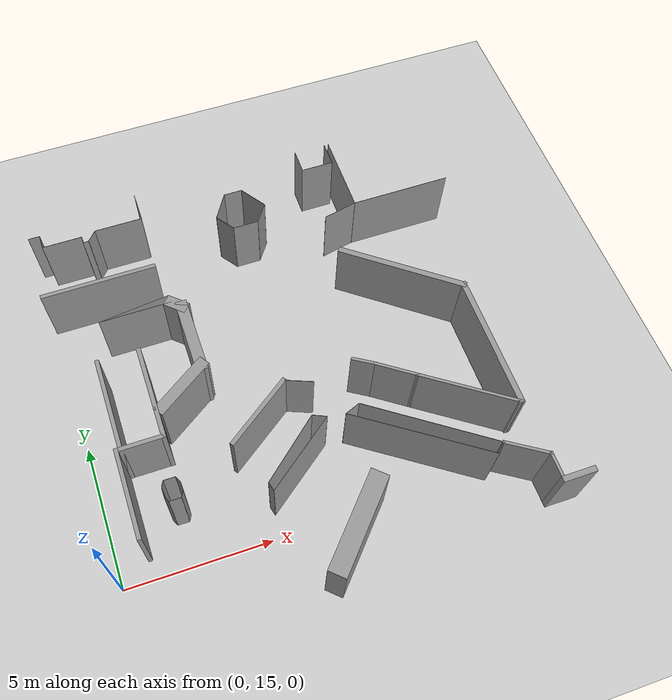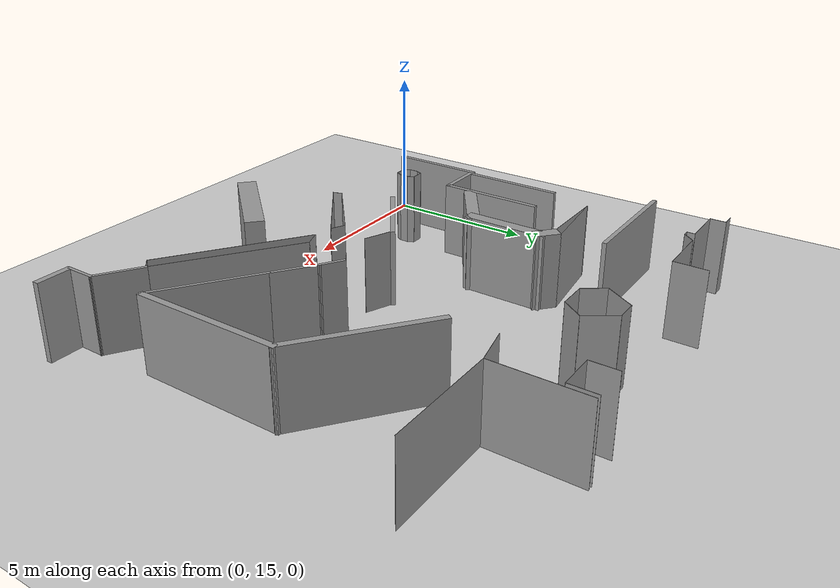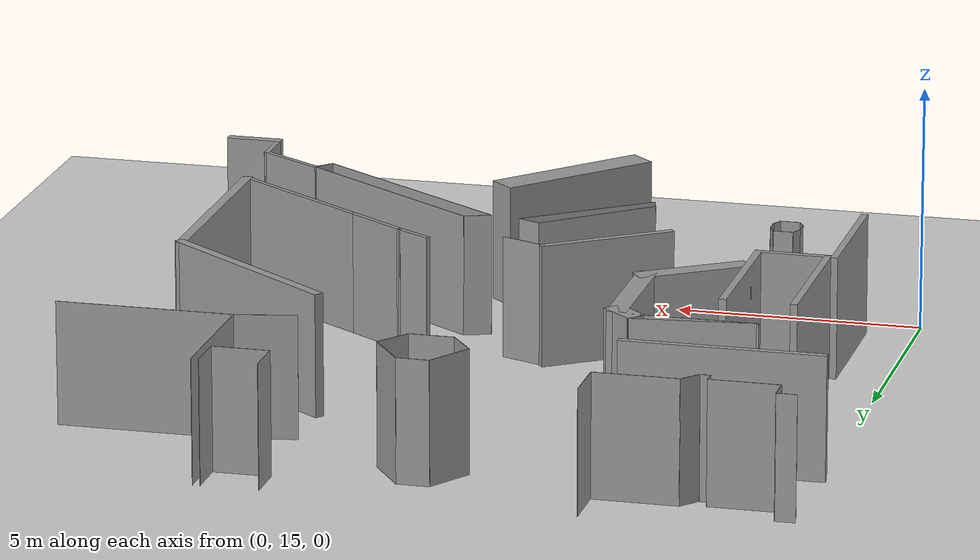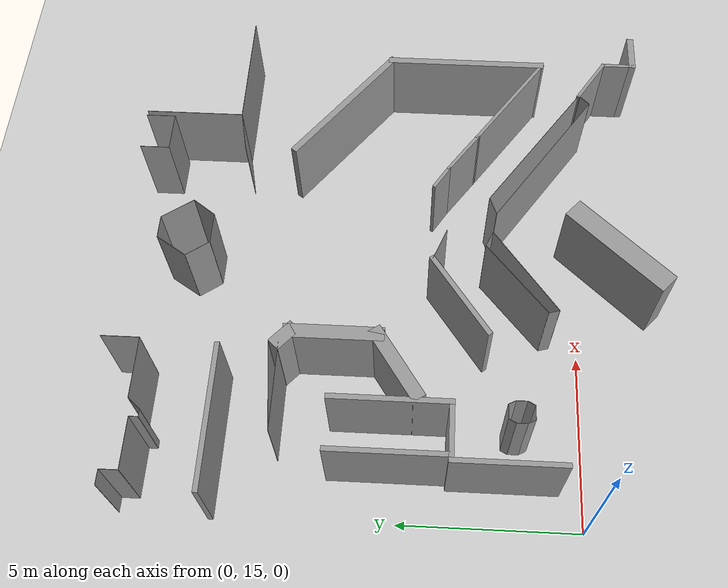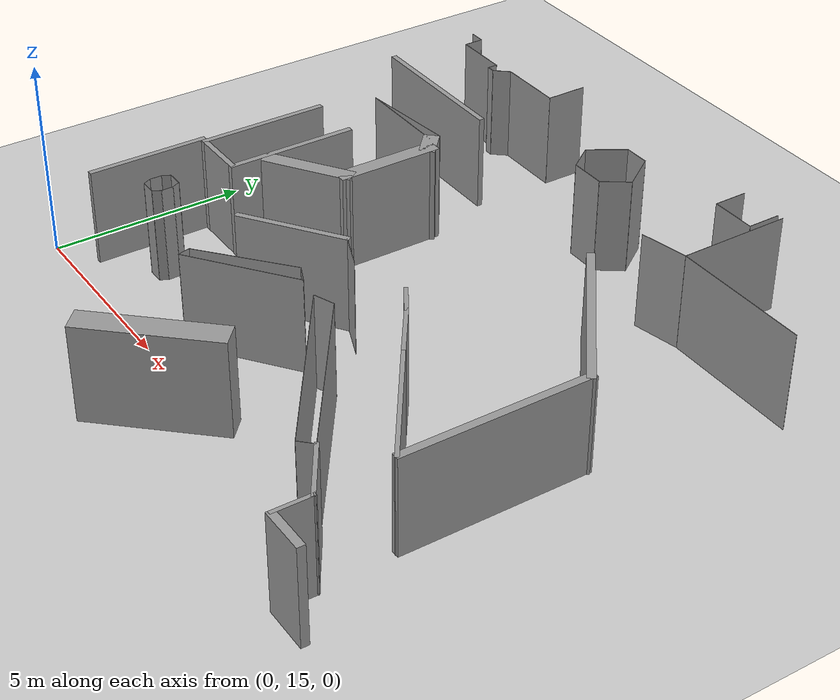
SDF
<sdf version="1.7">
 <world name="default">
  <model name="ground_plane">
   <static>1</static>
   <link name="link">
    <collision name="collision">
     <geometry><plane><normal>0 0 1</normal><size>100 100</size></plane></geometry>
     <surface>
      <contact><collide_bitmask>65535</collide_bitmask></contact>
      <friction><ode><mu>100</mu><mu2>50</mu2></ode></friction>
     </surface>
    </collision>
    <visual name="visual">
     <cast_shadows>0</cast_shadows>
     <geometry><plane><normal>0 0 1</normal><size>100 100</size></plane></geometry>
     <material>
      <script><uri>file://media/materials/scripts/gazebo.material</uri><name>Gazebo/Grey</name></script>
     </material>
    </visual>
   </link>
  </model>
  <model name="Untitled_0_clone">
   <pose>10.7704 26.4495 0 0 0 -3.14159</pose>
   <link name="Wall_0">
    <collision name="Wall_0_Collision">
     <geometry><box><size>3.56 0.01 2.5</size></box></geometry>
     <pose>0 0 1.25 0 -0 0</pose>
    </collision>
    <visual name="Wall_0_Visual">
     <pose>0 0 1.25 0 -0 0</pose>
     <geometry><box><size>3.56 0.01 2.5</size></box></geometry>
     <material>
      <script><uri>file://media/materials/scripts/gazebo.material</uri><name>Gazebo/Grey</name></script>
      <ambient>1 1 1 1</ambient>
     </material>
     <meta><layer>0</layer></meta>
    </visual>
    <pose>-2.45099 1.29954 0 0 -0 0</pose>
   </link>
   <link name="Wall_10">
    <collision name="Wall_10_Collision">
     <geometry><box><size>0.855 0.01 2.5</size></box></geometry>
     <pose>0 0 1.25 0 -0 0</pose>
    </collision>
    <visual name="Wall_10_Visual">
     <pose>0 0 1.25 0 -0 0</pose>
     <geometry><box><size>0.855 0.01 2.5</size></box></geometry>
     <material>
      <script><uri>file://media/materials/scripts/gazebo.material</uri><name>Gazebo/Grey</name></script>
      <ambient>1 1 1 1</ambient>
     </material>
     <meta><layer>0</layer></meta>
    </visual>
    <pose>0.624012 -1.12796 0 0 -0 -1.5708</pose>
   </link>
   <link name="Wall_12">
    <collision name="Wall_12_Collision">
     <geometry><box><size>0.91 0.01 2.5</size></box></geometry>
     <pose>0 0 1.25 0 -0 0</pose>
    </collision>
    <visual name="Wall_12_Visual">
     <pose>0 0 1.25 0 -0 0</pose>
     <geometry><box><size>0.91 0.01 2.5</size></box></geometry>
     <material>
      <script><uri>file://media/materials/scripts/gazebo.material</uri><name>Gazebo/Grey</name></script>
      <ambient>1 1 1 1</ambient>
     </material>
     <meta><layer>0</layer></meta>
    </visual>
    <pose>3.32401 0.949543 0 0 -0 0</pose>
   </link>
   <link name="Wall_14">
    <collision name="Wall_14_Collision">
     <geometry><box><size>0.784209 0.01 2.5</size></box></geometry>
     <pose>0 0 1.25 0 -0 0</pose>
    </collision>
    <visual name="Wall_14_Visual">
     <pose>0 0 1.25 0 -0 0</pose>
     <geometry><box><size>0.784209 0.01 2.5</size></box></geometry>
     <material>
      <script><uri>file://media/materials/scripts/gazebo.material</uri><name>Gazebo/Grey</name></script>
      <ambient>1 1 1 1</ambient>
     </material>
     <meta><layer>0</layer></meta>
    </visual>
    <pose>3.99901 0.634543 0 0 -0 -0.950547</pose>
   </link>
   <link name="Wall_16">
    <collision name="Wall_16_Collision">
     <geometry><box><size>1.03927 0.01 2.5</size></box></geometry>
     <pose>0 0 1.25 0 -0 0</pose>
    </collision>
    <visual name="Wall_16_Visual">
     <pose>0 0 1.25 0 -0 0</pose>
     <geometry><box><size>1.03927 0.01 2.5</size></box></geometry>
     <material>
      <script><uri>file://media/materials/scripts/gazebo.material</uri><name>Gazebo/Grey</name></script>
      <ambient>1 1 1 1</ambient>
     </material>
     <meta><layer>0</layer></meta>
    </visual>
    <pose>3.94901 -0.115457 0 0 -0 -2.13455</pose>
   </link>
   <link name="Wall_18">
    <collision name="Wall_18_Collision">
     <geometry><box><size>0.66 0.01 2.5</size></box></geometry>
     <pose>0 0 1.25 0 -0 0</pose>
    </collision>
    <visual name="Wall_18_Visual">
     <pose>0 0 1.25 0 -0 0</pose>
     <geometry><box><size>0.66 0.01 2.5</size></box></geometry>
     <material>
      <script><uri>file://media/materials/scripts/gazebo.material</uri><name>Gazebo/Grey</name></script>
      <ambient>1 1 1 1</ambient>
     </material>
     <meta><layer>0</layer></meta>
    </visual>
    <pose>3.34901 -0.550457 0 0 -0 3.14159</pose>
   </link>
   <link name="Wall_2">
    <collision name="Wall_2_Collision">
     <geometry><box><size>2.86 0.01 2.5</size></box></geometry>
     <pose>0 0 1.25 0 -0 0</pose>
    </collision>
    <visual name="Wall_2_Visual">
     <pose>0 0 1.25 0 -0 0</pose>
     <geometry><box><size>2.86 0.01 2.5</size></box></geometry>
     <material>
      <script><uri>file://media/materials/scripts/gazebo.material</uri><name>Gazebo/Grey</name></script>
      <ambient>1 1 1 1</ambient>
     </material>
     <meta><layer>0</layer></meta>
    </visual>
    <pose>-0.675988 -0.125457 0 0 -0 -1.5708</pose>
   </link>
   <link name="Wall_20">
    <collision name="Wall_20_Collision">
     <geometry><box><size>1.06683 0.01 2.5</size></box></geometry>
     <pose>0 0 1.25 0 -0 0</pose>
    </collision>
    <visual name="Wall_20_Visual">
     <pose>0 0 1.25 0 -0 0</pose>
     <geometry><box><size>1.06683 0.01 2.5</size></box></geometry>
     <material>
      <script><uri>file://media/materials/scripts/gazebo.material</uri><name>Gazebo/Grey</name></script>
      <ambient>1 1 1 1</ambient>
     </material>
     <meta><layer>0</layer></meta>
    </visual>
    <pose>2.72401 -0.115457 0 0 -0 2.17455</pose>
   </link>
   <link name="Wall_22">
    <collision name="Wall_22_Collision">
     <geometry><box><size>0.784209 0.01 2.5</size></box></geometry>
     <pose>0 0 1.25 0 -0 0</pose>
    </collision>
    <visual name="Wall_22_Visual">
     <pose>0 0 1.25 0 -0 0</pose>
     <geometry><box><size>0.784209 0.01 2.5</size></box></geometry>
     <material>
      <script><uri>file://media/materials/scripts/gazebo.material</uri><name>Gazebo/Grey</name></script>
      <ambient>1 1 1 1</ambient>
     </material>
     <meta><layer>0</layer></meta>
    </visual>
    <pose>2.64901 0.634543 0 0 -0 -2.19105</pose>
   </link>
   <link name="Wall_4">
    <collision name="Wall_4_Collision">
     <geometry><box><size>1.23577 0.01 2.5</size></box></geometry>
     <pose>0 0 1.25 0 -0 0</pose>
    </collision>
    <visual name="Wall_4_Visual">
     <pose>0 0 1.25 0 -0 0</pose>
     <geometry><box><size>1.23577 0.01 2.5</size></box></geometry>
     <material>
      <script><uri>file://media/materials/scripts/gazebo.material</uri><name>Gazebo/Grey</name></script>
      <ambient>1 1 1 1</ambient>
     </material>
     <meta><layer>0</layer></meta>
    </visual>
    <pose>-0.075987 1.42454 0 0 -0 0.205395</pose>
   </link>
   <link name="Wall_6">
    <collision name="Wall_6_Collision">
     <geometry><box><size>0.855 0.01 2.5</size></box></geometry>
     <pose>0 0 1.25 0 -0 0</pose>
    </collision>
    <visual name="Wall_6_Visual">
     <pose>0 0 1.25 0 -0 0</pose>
     <geometry><box><size>0.855 0.01 2.5</size></box></geometry>
     <material>
      <script><uri>file://media/materials/scripts/gazebo.material</uri><name>Gazebo/Grey</name></script>
      <ambient>1 1 1 1</ambient>
     </material>
     <meta><layer>0</layer></meta>
    </visual>
    <pose>-0.525987 -1.12796 0 0 -0 -1.5708</pose>
   </link>
   <link name="Wall_8">
    <collision name="Wall_8_Collision">
     <geometry><box><size>1.16 0.01 2.5</size></box></geometry>
     <pose>0 0 1.25 0 -0 0</pose>
    </collision>
    <visual name="Wall_8_Visual">
     <pose>0 0 1.25 0 -0 0</pose>
     <geometry><box><size>1.16 0.01 2.5</size></box></geometry>
     <material>
      <script><uri>file://media/materials/scripts/gazebo.material</uri><name>Gazebo/Grey</name></script>
      <ambient>1 1 1 1</ambient>
     </material>
     <meta><layer>0</layer></meta>
    </visual>
    <pose>0.049013 -0.705457 0 0 -0 0</pose>
   </link>
   <static>1</static>
  </model>
  <model name="Untitled_1_clone">
   <pose>7.465 26.4075 0 0 -0 3.14159</pose>
   <link name="Wall_0">
    <collision name="Wall_0_Collision">
     <geometry><box><size>1.06 0.01 2.5</size></box></geometry>
     <pose>0 0 1.25 0 -0 0</pose>
    </collision>
    <visual name="Wall_0_Visual">
     <pose>0 0 1.25 0 -0 0</pose>
     <geometry><box><size>1.06 0.01 2.5</size></box></geometry>
     <material>
      <script><uri>file://media/materials/scripts/gazebo.material</uri><name>Gazebo/Grey</name></script>
      <ambient>1 1 1 1</ambient>
     </material>
     <meta><layer>0</layer></meta>
    </visual>
    <pose>3.465 -1.0675 0 0 -0 1.5708</pose>
   </link>
   <link name="Wall_10">
    <collision name="Wall_10_Collision">
     <geometry><box><size>0.470977 0.01 2.5</size></box></geometry>
     <pose>0 0 1.25 0 -0 0</pose>
    </collision>
    <visual name="Wall_10_Visual">
     <pose>0 0 1.25 0 -0 0</pose>
     <geometry><box><size>0.470977 0.01 2.5</size></box></geometry>
     <material>
      <script><uri>file://media/materials/scripts/gazebo.material</uri><name>Gazebo/Grey</name></script>
      <ambient>1 1 1 1</ambient>
     </material>
     <meta><layer>0</layer></meta>
    </visual>
    <pose>5.315 -0.3675 0 0 -0 0.86217</pose>
   </link>
   <link name="Wall_14">
    <collision name="Wall_14_Collision">
     <geometry><box><size>0.01 0.01 2.5</size></box></geometry>
     <pose>0 0 1.25 0 -0 0</pose>
    </collision>
    <visual name="Wall_14_Visual">
     <pose>0 0 1.25 0 -0 0</pose>
     <geometry><box><size>0.01 0.01 2.5</size></box></geometry>
     <material>
      <script><uri>file://media/materials/scripts/gazebo.material</uri><name>Gazebo/Grey</name></script>
      <ambient>1 1 1 1</ambient>
     </material>
     <meta><layer>0</layer></meta>
    </visual>
    <pose>5.465 -0.1925 0 0 -0 0</pose>
   </link>
   <link name="Wall_18">
    <collision name="Wall_18_Collision">
     <geometry><box><size>0.01 0.01 2.5</size></box></geometry>
     <pose>0 0 1.25 0 -0 0</pose>
    </collision>
    <visual name="Wall_18_Visual">
     <pose>0 0 1.25 0 -0 0</pose>
     <geometry><box><size>0.01 0.01 2.5</size></box></geometry>
     <material>
      <script><uri>file://media/materials/scripts/gazebo.material</uri><name>Gazebo/Grey</name></script>
      <ambient>1 1 1 1</ambient>
     </material>
     <meta><layer>0</layer></meta>
    </visual>
    <pose>5.665 -0.1925 0 0 -0 0</pose>
   </link>
   <link name="Wall_20">
    <collision name="Wall_20_Collision">
     <geometry><box><size>0.26 0.01 2.5</size></box></geometry>
     <pose>0 0 1.25 0 -0 0</pose>
    </collision>
    <visual name="Wall_20_Visual">
     <pose>0 0 1.25 0 -0 0</pose>
     <geometry><box><size>0.26 0.01 2.5</size></box></geometry>
     <material>
      <script><uri>file://media/materials/scripts/gazebo.material</uri><name>Gazebo/Grey</name></script>
      <ambient>1 1 1 1</ambient>
     </material>
     <meta><layer>0</layer></meta>
    </visual>
    <pose>5.665 -0.3175 0 0 -0 -1.5708</pose>
   </link>
   <link name="Wall_22">
    <collision name="Wall_22_Collision">
     <geometry><box><size>0.21 0.01 2.5</size></box></geometry>
     <pose>0 0 1.25 0 -0 0</pose>
    </collision>
    <visual name="Wall_22_Visual">
     <pose>0 0 1.25 0 -0 0</pose>
     <geometry><box><size>0.21 0.01 2.5</size></box></geometry>
     <material>
      <script><uri>file://media/materials/scripts/gazebo.material</uri><name>Gazebo/Grey</name></script>
      <ambient>1 1 1 1</ambient>
     </material>
     <meta><layer>0</layer></meta>
    </visual>
    <pose>5.565 -0.1925 0 0 -0 0</pose>
   </link>
   <link name="Wall_24">
    <collision name="Wall_24_Collision">
     <geometry><box><size>1.41 0.01 2.5</size></box></geometry>
     <pose>0 0 1.25 0 -0 0</pose>
    </collision>
    <visual name="Wall_24_Visual">
     <pose>0 0 1.25 0 -0 0</pose>
     <geometry><box><size>1.41 0.01 2.5</size></box></geometry>
     <material>
      <script><uri>file://media/materials/scripts/gazebo.material</uri><name>Gazebo/Grey</name></script>
      <ambient>1 1 1 1</ambient>
     </material>
     <meta><layer>0</layer></meta>
    </visual>
    <pose>6.365 -0.4425 0 0 -0 0</pose>
   </link>
   <link name="Wall_26">
    <collision name="Wall_26_Collision">
     <geometry><box><size>0.512 0.01 2.5</size></box></geometry>
     <pose>0 0 1.25 0 -0 0</pose>
    </collision>
    <visual name="Wall_26_Visual">
     <pose>0 0 1.25 0 -0 0</pose>
     <geometry><box><size>0.512 0.01 2.5</size></box></geometry>
     <material>
      <script><uri>file://media/materials/scripts/gazebo.material</uri><name>Gazebo/Grey</name></script>
      <ambient>1 1 1 1</ambient>
     </material>
     <meta><layer>0</layer></meta>
    </visual>
    <pose>7.065 -0.6935 0 0 -0 -1.5708</pose>
   </link>
   <link name="Wall_28">
    <collision name="Wall_28_Collision">
     <geometry><box><size>0.41 0.01 2.5</size></box></geometry>
     <pose>0 0 1.25 0 -0 0</pose>
    </collision>
    <visual name="Wall_28_Visual">
     <pose>0 0 1.25 0 -0 0</pose>
     <geometry><box><size>0.41 0.01 2.5</size></box></geometry>
     <material>
      <script><uri>file://media/materials/scripts/gazebo.material</uri><name>Gazebo/Grey</name></script>
      <ambient>1 1 1 1</ambient>
     </material>
     <meta><layer>0</layer></meta>
    </visual>
    <pose>7.265 -0.9445 0 0 -0 0</pose>
   </link>
   <link name="Wall_30">
    <collision name="Wall_30_Collision">
     <geometry><box><size>4.04 0.14 2.5</size></box></geometry>
     <pose>0 0 1.25 0 -0 0</pose>
    </collision>
    <visual name="Wall_30_Visual">
     <pose>0 0 1.25 0 -0 0</pose>
     <geometry><box><size>4.04 0.14 2.5</size></box></geometry>
     <material>
      <script><uri>file://media/materials/scripts/gazebo.material</uri><name>Gazebo/Grey</name></script>
      <ambient>1 1 1 1</ambient>
     </material>
     <meta><layer>0</layer></meta>
    </visual>
    <pose>5.515 1.5275 0 0 -0 0</pose>
   </link>
   <link name="Wall_8">
    <collision name="Wall_8_Collision">
     <geometry><box><size>1.71 0.01 2.5</size></box></geometry>
     <pose>0 0 1.25 0 -0 0</pose>
    </collision>
    <visual name="Wall_8_Visual">
     <pose>0 0 1.25 0 -0 0</pose>
     <geometry><box><size>1.71 0.01 2.5</size></box></geometry>
     <material>
      <script><uri>file://media/materials/scripts/gazebo.material</uri><name>Gazebo/Grey</name></script>
      <ambient>1 1 1 1</ambient>
     </material>
     <meta><layer>0</layer></meta>
    </visual>
    <pose>4.315 -0.5425 0 0 -0 0</pose>
   </link>
   <static>1</static>
  </model>
  <model name="Untitled_2_clone">
   <pose>7.995 21.8148 0 0 -0 3.14159</pose>
   <link name="Wall_0">
    <collision name="Wall_0_Collision">
     <geometry><box><size>2.73 0.4 2.5</size></box></geometry>
     <pose>0 0 1.25 0 -0 0</pose>
    </collision>
    <visual name="Wall_0_Visual">
     <pose>0 0 1.25 0 -0 0</pose>
     <geometry><box><size>2.73 0.4 2.5</size></box></geometry>
     <material>
      <script><uri>file://media/materials/scripts/gazebo.material</uri><name>Gazebo/Grey</name></script>
      <ambient>1 1 1 1</ambient>
     </material>
     <meta><layer>0</layer></meta>
    </visual>
    <pose>3.595 -0.020154 0 0 -0 -1.5708</pose>
   </link>
   <link name="Wall_10">
    <collision name="Wall_10_Collision">
     <geometry><box><size>3.36 0.15 2.5</size></box></geometry>
     <pose>0 0 1.25 0 -0 0</pose>
    </collision>
    <visual name="Wall_10_Visual">
     <pose>0 0 1.25 0 -0 0</pose>
     <geometry><box><size>3.36 0.15 2.5</size></box></geometry>
     <material>
      <script><uri>file://media/materials/scripts/gazebo.material</uri><name>Gazebo/Grey</name></script>
      <ambient>1 1 1 1</ambient>
     </material>
     <meta><layer>0</layer></meta>
    </visual>
    <pose>5.395 1.57985 0 0 -0 1.5708</pose>
   </link>
   <link name="Wall_12">
    <collision name="Wall_12_Collision">
     <geometry><box><size>1.54 0.14 2.5</size></box></geometry>
     <pose>0 0 1.25 0 -0 0</pose>
    </collision>
    <visual name="Wall_12_Visual">
     <pose>0 0 1.25 0 -0 0</pose>
     <geometry><box><size>1.54 0.14 2.5</size></box></geometry>
     <material>
      <script><uri>file://media/materials/scripts/gazebo.material</uri><name>Gazebo/Grey</name></script>
      <ambient>1 1 1 1</ambient>
     </material>
     <meta><layer>0</layer></meta>
    </visual>
    <pose>6.095 3.18485 0 0 -0 0</pose>
   </link>
   <link name="Wall_14">
    <collision name="Wall_14_Collision">
     <geometry><box><size>3.35 0.14 2.5</size></box></geometry>
     <pose>0 0 1.25 0 -0 0</pose>
    </collision>
    <visual name="Wall_14_Visual">
     <pose>0 0 1.25 0 -0 0</pose>
     <geometry><box><size>3.35 0.14 2.5</size></box></geometry>
     <material>
      <script><uri>file://media/materials/scripts/gazebo.material</uri><name>Gazebo/Grey</name></script>
      <ambient>1 1 1 1</ambient>
     </material>
     <meta><layer>0</layer></meta>
    </visual>
    <pose>6.795 1.57985 0 0 -0 -1.5708</pose>
   </link>
   <link name="Wall_16">
    <collision name="Wall_16_Collision">
     <geometry><box><size>3.07061 0.14 2.5</size></box></geometry>
     <pose>0 0 1.25 0 -0 0</pose>
    </collision>
    <visual name="Wall_16_Visual">
     <pose>0 0 1.25 0 -0 0</pose>
     <geometry><box><size>3.07061 0.14 2.5</size></box></geometry>
     <material>
      <script><uri>file://media/materials/scripts/gazebo.material</uri><name>Gazebo/Grey</name></script>
      <ambient>1 1 1 1</ambient>
     </material>
     <meta><layer>0</layer></meta>
    </visual>
    <pose>6.935 4.64985 0 0 -0 1.5708</pose>
   </link>
   <link name="Wall_2">
    <collision name="Wall_2_Collision">
     <geometry><box><size>0.803609 0.4 2.5</size></box></geometry>
     <pose>0 0 1.25 0 -0 0</pose>
    </collision>
    <visual name="Wall_2_Visual">
     <pose>0 0 1.25 0 -0 0</pose>
     <geometry><box><size>0.803609 0.4 2.5</size></box></geometry>
     <material>
      <script><uri>file://media/materials/scripts/gazebo.material</uri><name>Gazebo/Grey</name></script>
      <ambient>1 1 1 1</ambient>
     </material>
     <meta><layer>0</layer></meta>
    </visual>
    <pose>3.745 -1.32015 0 0 -0 -0.732815</pose>
   </link>
   <link name="Wall_4">
    <collision name="Wall_4_Collision">
     <geometry><box><size>2.51 0.01 2.5</size></box></geometry>
     <pose>0 0 1.25 0 -0 0</pose>
    </collision>
    <visual name="Wall_4_Visual">
     <pose>0 0 1.25 0 -0 0</pose>
     <geometry><box><size>2.51 0.01 2.5</size></box></geometry>
     <material>
      <script><uri>file://media/materials/scripts/gazebo.material</uri><name>Gazebo/Grey</name></script>
      <ambient>1 1 1 1</ambient>
     </material>
     <meta><layer>0</layer></meta>
    </visual>
    <pose>5.145 -1.45515 0 0 -0 0</pose>
   </link>
   <link name="Wall_6">
    <collision name="Wall_6_Collision">
     <geometry><box><size>2.51563 0.001 2.5</size></box></geometry>
     <pose>0 0 1.25 0 -0 0</pose>
    </collision>
    <visual name="Wall_6_Visual">
     <pose>0 0 1.25 0 -0 0</pose>
     <geometry><box><size>2.51563 0.001 2.5</size></box></geometry>
     <material>
      <script><uri>file://media/materials/scripts/gazebo.material</uri><name>Gazebo/Grey</name></script>
      <ambient>1 1 1 1</ambient>
     </material>
     <meta><layer>0</layer></meta>
    </visual>
    <pose>5.145 -1.59515 0 0 -0 -3.03006</pose>
   </link>
   <link name="Wall_8">
    <collision name="Wall_8_Collision">
     <geometry><box><size>2.33039 0.4 2.5</size></box></geometry>
     <pose>0 0 1.25 0 -0 0</pose>
    </collision>
    <visual name="Wall_8_Visual">
     <pose>0 0 1.25 0 -0 0</pose>
     <geometry><box><size>2.33039 0.4 2.5</size></box></geometry>
     <material>
      <script><uri>file://media/materials/scripts/gazebo.material</uri><name>Gazebo/Grey</name></script>
      <ambient>1 1 1 1</ambient>
     </material>
     <meta><layer>0</layer></meta>
    </visual>
    <pose>4.395 1.68485 0 0 -0 0.59375</pose>
   </link>
   <static>1</static>
  </model>
  <model name="Untitled_3_clone">
   <pose>8.54665 22.2466 0 0 -0 3.14159</pose>
   <link name="Wall_0">
    <collision name="Wall_0_Collision">
     <geometry><box><size>0.233607 0.01 2.5</size></box></geometry>
     <pose>0 0 1.25 0 -0 0</pose>
    </collision>
    <visual name="Wall_0_Visual">
     <pose>0 0 1.25 0 -0 0</pose>
     <geometry><box><size>0.233607 0.01 2.5</size></box></geometry>
     <material>
      <script><uri>file://media/materials/scripts/gazebo.material</uri><name>Gazebo/Grey</name></script>
      <ambient>1 1 1 1</ambient>
     </material>
     <meta><layer>0</layer></meta>
    </visual>
    <pose>5.89665 5.64665 0 0 -0 -2.03444</pose>
   </link>
   <link name="Wall_10">
    <collision name="Wall_10_Collision">
     <geometry><box><size>0.31 0.01 2.5</size></box></geometry>
     <pose>0 0 1.25 0 -0 0</pose>
    </collision>
    <visual name="Wall_10_Visual">
     <pose>0 0 1.25 0 -0 0</pose>
     <geometry><box><size>0.31 0.01 2.5</size></box></geometry>
     <material>
      <script><uri>file://media/materials/scripts/gazebo.material</uri><name>Gazebo/Grey</name></script>
      <ambient>1 1 1 1</ambient>
     </material>
     <meta><layer>0</layer></meta>
    </visual>
    <pose>6.44665 5.39665 0 0 -0 1.5708</pose>
   </link>
   <link name="Wall_12">
    <collision name="Wall_12_Collision">
     <geometry><box><size>0.233607 0.01 2.5</size></box></geometry>
     <pose>0 0 1.25 0 -0 0</pose>
    </collision>
    <visual name="Wall_12_Visual">
     <pose>0 0 1.25 0 -0 0</pose>
     <geometry><box><size>0.233607 0.01 2.5</size></box></geometry>
     <material>
      <script><uri>file://media/materials/scripts/gazebo.material</uri><name>Gazebo/Grey</name></script>
      <ambient>1 1 1 1</ambient>
     </material>
     <meta><layer>0</layer></meta>
    </visual>
    <pose>6.39665 5.64665 0 0 -0 2.03444</pose>
   </link>
   <link name="Wall_14">
    <collision name="Wall_14_Collision">
     <geometry><box><size>0.41 0.01 2.5</size></box></geometry>
     <pose>0 0 1.25 0 -0 0</pose>
    </collision>
    <visual name="Wall_14_Visual">
     <pose>0 0 1.25 0 -0 0</pose>
     <geometry><box><size>0.41 0.01 2.5</size></box></geometry>
     <material>
      <script><uri>file://media/materials/scripts/gazebo.material</uri><name>Gazebo/Grey</name></script>
      <ambient>1 1 1 1</ambient>
     </material>
     <meta><layer>0</layer></meta>
    </visual>
    <pose>6.14665 5.74665 0 0 -0 0</pose>
   </link>
   <link name="Wall_2">
    <collision name="Wall_2_Collision">
     <geometry><box><size>0.31 0.01 2.5</size></box></geometry>
     <pose>0 0 1.25 0 -0 0</pose>
    </collision>
    <visual name="Wall_2_Visual">
     <pose>0 0 1.25 0 -0 0</pose>
     <geometry><box><size>0.31 0.01 2.5</size></box></geometry>
     <material>
      <script><uri>file://media/materials/scripts/gazebo.material</uri><name>Gazebo/Grey</name></script>
      <ambient>1 1 1 1</ambient>
     </material>
     <meta><layer>0</layer></meta>
    </visual>
    <pose>5.84665 5.39665 0 0 -0 -1.5708</pose>
   </link>
   <link name="Wall_4">
    <collision name="Wall_4_Collision">
     <geometry><box><size>0.233607 0.01 2.5</size></box></geometry>
     <pose>0 0 1.25 0 -0 0</pose>
    </collision>
    <visual name="Wall_4_Visual">
     <pose>0 0 1.25 0 -0 0</pose>
     <geometry><box><size>0.233607 0.01 2.5</size></box></geometry>
     <material>
      <script><uri>file://media/materials/scripts/gazebo.material</uri><name>Gazebo/Grey</name></script>
      <ambient>1 1 1 1</ambient>
     </material>
     <meta><layer>0</layer></meta>
    </visual>
    <pose>5.89665 5.14665 0 0 -0 -1.10715</pose>
   </link>
   <link name="Wall_6">
    <collision name="Wall_6_Collision">
     <geometry><box><size>0.41 0.01 2.5</size></box></geometry>
     <pose>0 0 1.25 0 -0 0</pose>
    </collision>
    <visual name="Wall_6_Visual">
     <pose>0 0 1.25 0 -0 0</pose>
     <geometry><box><size>0.41 0.01 2.5</size></box></geometry>
     <material>
      <script><uri>file://media/materials/scripts/gazebo.material</uri><name>Gazebo/Grey</name></script>
      <ambient>1 1 1 1</ambient>
     </material>
     <meta><layer>0</layer></meta>
    </visual>
    <pose>6.14665 5.04665 0 0 -0 0</pose>
   </link>
   <link name="Wall_8">
    <collision name="Wall_8_Collision">
     <geometry><box><size>0.233607 0.01 2.5</size></box></geometry>
     <pose>0 0 1.25 0 -0 0</pose>
    </collision>
    <visual name="Wall_8_Visual">
     <pose>0 0 1.25 0 -0 0</pose>
     <geometry><box><size>0.233607 0.01 2.5</size></box></geometry>
     <material>
      <script><uri>file://media/materials/scripts/gazebo.material</uri><name>Gazebo/Grey</name></script>
      <ambient>1 1 1 1</ambient>
     </material>
     <meta><layer>0</layer></meta>
    </visual>
    <pose>6.39665 5.14665 0 0 -0 1.10715</pose>
   </link>
   <static>1</static>
  </model>
  <model name="Untitled_4_clone">
   <pose>9.74768 21.3465 0 0 -0 3.14159</pose>
   <link name="Wall_0">
    <collision name="Wall_0_Collision">
     <geometry><box><size>2.83067 0.15 2.5</size></box></geometry>
     <pose>0 0 1.25 0 -0 0</pose>
    </collision>
    <visual name="Wall_0_Visual">
     <pose>0 0 1.25 0 -0 0</pose>
     <geometry><box><size>2.83067 0.15 2.5</size></box></geometry>
     <material>
      <script><uri>file://media/materials/scripts/gazebo.material</uri><name>Gazebo/Grey</name></script>
      <ambient>1 1 1 1</ambient>
     </material>
     <meta><layer>0</layer></meta>
    </visual>
    <pose>4.05768 2.86646 0 0 -0 -2.52048</pose>
   </link>
   <link name="Wall_10">
    <collision name="Wall_10_Collision">
     <geometry><box><size>2.63488 0.01 2.5</size></box></geometry>
     <pose>0 0 1.25 0 -0 0</pose>
    </collision>
    <visual name="Wall_10_Visual">
     <pose>0 0 1.25 0 -0 0</pose>
     <geometry><box><size>2.63488 0.01 2.5</size></box></geometry>
     <material>
      <script><uri>file://media/materials/scripts/gazebo.material</uri><name>Gazebo/Grey</name></script>
      <ambient>1 1 1 1</ambient>
     </material>
     <meta><layer>0</layer></meta>
    </visual>
    <pose>3.49768 4.39647 0 0 -0 0.704494</pose>
   </link>
   <link name="Wall_12">
    <collision name="Wall_12_Collision">
     <geometry><box><size>4.9419 0.01 2.5</size></box></geometry>
     <pose>0 0 1.25 0 -0 0</pose>
    </collision>
    <visual name="Wall_12_Visual">
     <pose>0 0 1.25 0 -0 0</pose>
     <geometry><box><size>4.9419 0.01 2.5</size></box></geometry>
     <material>
      <script><uri>file://media/materials/scripts/gazebo.material</uri><name>Gazebo/Grey</name></script>
      <ambient>1 1 1 1</ambient>
     </material>
     <meta><layer>0</layer></meta>
    </visual>
    <pose>-0.582319 5.24646 0 0 -0 -0.603749</pose>
   </link>
   <link name="Wall_14">
    <collision name="Wall_14_Collision">
     <geometry><box><size>0.434264 0.01 2.5</size></box></geometry>
     <pose>0 0 1.25 0 -0 0</pose>
    </collision>
    <visual name="Wall_14_Visual">
     <pose>0 0 1.25 0 -0 0</pose>
     <geometry><box><size>0.434264 0.01 2.5</size></box></geometry>
     <material>
      <script><uri>file://media/materials/scripts/gazebo.material</uri><name>Gazebo/Grey</name></script>
      <ambient>1 1 1 1</ambient>
     </material>
     <meta><layer>0</layer></meta>
    </visual>
    <pose>-2.76232 6.49646 0 0 -0 -2.35619</pose>
   </link>
   <link name="Wall_16">
    <collision name="Wall_16_Collision">
     <geometry><box><size>4.70421 0.01 2.5</size></box></geometry>
     <pose>0 0 1.25 0 -0 0</pose>
    </collision>
    <visual name="Wall_16_Visual">
     <pose>0 0 1.25 0 -0 0</pose>
     <geometry><box><size>4.70421 0.01 2.5</size></box></geometry>
     <material>
      <script><uri>file://media/materials/scripts/gazebo.material</uri><name>Gazebo/Grey</name></script>
      <ambient>1 1 1 1</ambient>
     </material>
     <meta><layer>0</layer></meta>
    </visual>
    <pose>-0.992319 4.99646 0 0 -0 -0.61282</pose>
   </link>
   <link name="Wall_18">
    <collision name="Wall_18_Collision">
     <geometry><box><size>0.567136 0.01 2.5</size></box></geometry>
     <pose>0 0 1.25 0 -0 0</pose>
    </collision>
    <visual name="Wall_18_Visual">
     <pose>0 0 1.25 0 -0 0</pose>
     <geometry><box><size>0.567136 0.01 2.5</size></box></geometry>
     <material>
      <script><uri>file://media/materials/scripts/gazebo.material</uri><name>Gazebo/Grey</name></script>
      <ambient>1 1 1 1</ambient>
     </material>
     <meta><layer>0</layer></meta>
    </visual>
    <pose>1.18768 3.74646 0 0 -0 0.367174</pose>
   </link>
   <link name="Wall_2">
    <collision name="Wall_2_Collision">
     <geometry><box><size>1.00161 0.01 2.5</size></box></geometry>
     <pose>0 0 1.25 0 -0 0</pose>
    </collision>
    <visual name="Wall_2_Visual">
     <pose>0 0 1.25 0 -0 0</pose>
     <geometry><box><size>1.00161 0.01 2.5</size></box></geometry>
     <material>
      <script><uri>file://media/materials/scripts/gazebo.material</uri><name>Gazebo/Grey</name></script>
      <ambient>1 1 1 1</ambient>
     </material>
     <meta><layer>0</layer></meta>
    </visual>
    <pose>2.50768 2.27147 0 0 -0 2.75921</pose>
   </link>
   <link name="Wall_20">
    <collision name="Wall_20_Collision">
     <geometry><box><size>0.502443 0.01 2.5</size></box></geometry>
     <pose>0 0 1.25 0 -0 0</pose>
    </collision>
    <visual name="Wall_20_Visual">
     <pose>0 0 1.25 0 -0 0</pose>
     <geometry><box><size>0.502443 0.01 2.5</size></box></geometry>
     <material>
      <script><uri>file://media/materials/scripts/gazebo.material</uri><name>Gazebo/Grey</name></script>
      <ambient>1 1 1 1</ambient>
     </material>
     <meta><layer>0</layer></meta>
    </visual>
    <pose>2.27268 3.64647 0 0 -0 2.72337</pose>
   </link>
   <link name="Wall_22">
    <collision name="Wall_22_Collision">
     <geometry><box><size>0.854718 0.1 2.5</size></box></geometry>
     <pose>0 0 1.25 0 -0 0</pose>
    </collision>
    <visual name="Wall_22_Visual">
     <pose>0 0 1.25 0 -0 0</pose>
     <geometry><box><size>0.854718 0.1 2.5</size></box></geometry>
     <material>
      <script><uri>file://media/materials/scripts/gazebo.material</uri><name>Gazebo/Grey</name></script>
      <ambient>1 1 1 1</ambient>
     </material>
     <meta><layer>0</layer></meta>
    </visual>
    <pose>0.247681 2.26647 0 0 -0 -0.558599</pose>
   </link>
   <link name="Wall_24">
    <collision name="Wall_24_Collision">
     <geometry><box><size>1.52056 0.1 2.5</size></box></geometry>
     <pose>0 0 1.25 0 -0 0</pose>
    </collision>
    <visual name="Wall_24_Visual">
     <pose>0 0 1.25 0 -0 0</pose>
     <geometry><box><size>1.52056 0.1 2.5</size></box></geometry>
     <material>
      <script><uri>file://media/materials/scripts/gazebo.material</uri><name>Gazebo/Grey</name></script>
      <ambient>1 1 1 1</ambient>
     </material>
     <meta><layer>0</layer></meta>
    </visual>
    <pose>-0.652319 2.87646 0 0 -0 -0.61534</pose>
   </link>
   <link name="Wall_26">
    <collision name="Wall_26_Collision">
     <geometry><box><size>3.52603 0.1 2.5</size></box></geometry>
     <pose>0 0 1.25 0 -0 0</pose>
    </collision>
    <visual name="Wall_26_Visual">
     <pose>0 0 1.25 0 -0 0</pose>
     <geometry><box><size>3.52603 0.1 2.5</size></box></geometry>
     <material>
      <script><uri>file://media/materials/scripts/gazebo.material</uri><name>Gazebo/Grey</name></script>
      <ambient>1 1 1 1</ambient>
     </material>
     <meta><layer>0</layer></meta>
    </visual>
    <pose>-2.63732 4.26647 0 0 -0 -0.609052</pose>
   </link>
   <link name="Wall_6">
    <collision name="Wall_6_Collision">
     <geometry><box><size>0.320483 0.01 2.5</size></box></geometry>
     <pose>0 0 1.25 0 -0 0</pose>
    </collision>
    <visual name="Wall_6_Visual">
     <pose>0 0 1.25 0 -0 0</pose>
     <geometry><box><size>0.320483 0.01 2.5</size></box></geometry>
     <material>
      <script><uri>file://media/materials/scripts/gazebo.material</uri><name>Gazebo/Grey</name></script>
      <ambient>1 1 1 1</ambient>
     </material>
     <meta><layer>0</layer></meta>
    </visual>
    <pose>4.45768 5.39647 0 0 -0 -1.31019</pose>
   </link>
   <link name="Wall_8">
    <collision name="Wall_8_Collision">
     <geometry><box><size>2.98605 0.01 2.5</size></box></geometry>
     <pose>0 0 1.25 0 -0 0</pose>
    </collision>
    <visual name="Wall_8_Visual">
     <pose>0 0 1.25 0 -0 0</pose>
     <geometry><box><size>2.98605 0.01 2.5</size></box></geometry>
     <material>
      <script><uri>file://media/materials/scripts/gazebo.material</uri><name>Gazebo/Grey</name></script>
      <ambient>1 1 1 1</ambient>
     </material>
     <meta><layer>0</layer></meta>
    </visual>
    <pose>3.23268 4.64647 0 0 -0 0.649549</pose>
   </link>
   <static>1</static>
  </model>
  <model name="Untitled_5_clone">
   <pose>10.5225 20.2775 0 0 -0 3.14159</pose>
   <link name="Wall_10">
    <collision name="Wall_10_Collision">
     <geometry><box><size>4.79 0.2 2.5</size></box></geometry>
     <pose>0 0 1.25 0 -0 0</pose>
    </collision>
    <visual name="Wall_10_Visual">
     <pose>0 0 1.25 0 -0 0</pose>
     <geometry><box><size>4.79 0.2 2.5</size></box></geometry>
     <material>
      <script><uri>file://media/materials/scripts/gazebo.material</uri><name>Gazebo/Grey</name></script>
      <ambient>1 1 1 1</ambient>
     </material>
     <meta><layer>0</layer></meta>
    </visual>
    <pose>-3.26754 1.83246 0 0 -0 -1.5708</pose>
   </link>
   <link name="Wall_12">
    <collision name="Wall_12_Collision">
     <geometry><box><size>4.5942 0.2 2.5</size></box></geometry>
     <pose>0 0 1.25 0 -0 0</pose>
    </collision>
    <visual name="Wall_12_Visual">
     <pose>0 0 1.25 0 -0 0</pose>
     <geometry><box><size>4.5942 0.2 2.5</size></box></geometry>
     <material>
      <script><uri>file://media/materials/scripts/gazebo.material</uri><name>Gazebo/Grey</name></script>
      <ambient>1 1 1 1</ambient>
     </material>
     <meta><layer>0</layer></meta>
    </visual>
    <pose>-1.52254 -1.79754 0 0 -0 -0.653059</pose>
   </link>
   <link name="Wall_14">
    <collision name="Wall_14_Collision">
     <geometry><box><size>3.48217 0.63 2.5</size></box></geometry>
     <pose>0 0 1.25 0 -0 0</pose>
    </collision>
    <visual name="Wall_14_Visual">
     <pose>0 0 1.25 0 -0 0</pose>
     <geometry><box><size>3.48217 0.63 2.5</size></box></geometry>
     <material>
      <script><uri>file://media/materials/scripts/gazebo.material</uri><name>Gazebo/Grey</name></script>
      <ambient>1 1 1 1</ambient>
     </material>
     <meta><layer>0</layer></meta>
    </visual>
    <pose>3.06746 6.22746 0 0 -0 -2.31404</pose>
   </link>
   <link name="Wall_4">
    <collision name="Wall_4_Collision">
     <geometry><box><size>1.57567 0.1 2.5</size></box></geometry>
     <pose>0 0 1.25 0 -0 0</pose>
    </collision>
    <visual name="Wall_4_Visual">
     <pose>0 0 1.25 0 -0 0</pose>
     <geometry><box><size>1.57567 0.1 2.5</size></box></geometry>
     <material>
      <script><uri>file://media/materials/scripts/gazebo.material</uri><name>Gazebo/Grey</name></script>
      <ambient>1 1 1 1</ambient>
     </material>
     <meta><layer>0</layer></meta>
    </visual>
    <pose>-2.75754 5.67746 0 0 -0 -0.572966</pose>
   </link>
   <link name="Wall_6">
    <collision name="Wall_6_Collision">
     <geometry><box><size>1 0.1 2.5</size></box></geometry>
     <pose>0 0 1.25 0 -0 0</pose>
    </collision>
    <visual name="Wall_6_Visual">
     <pose>0 0 1.25 0 -0 0</pose>
     <geometry><box><size>1 0.1 2.5</size></box></geometry>
     <material>
      <script><uri>file://media/materials/scripts/gazebo.material</uri><name>Gazebo/Grey</name></script>
      <ambient>1 1 1 1</ambient>
     </material>
     <meta><layer>0</layer></meta>
    </visual>
    <pose>-3.37754 6.52746 0 0 -0 1.5708</pose>
   </link>
   <link name="Wall_8">
    <collision name="Wall_8_Collision">
     <geometry><box><size>1.15 0.2 2.5</size></box></geometry>
     <pose>0 0 1.25 0 -0 0</pose>
    </collision>
    <visual name="Wall_8_Visual">
     <pose>0 0 1.25 0 -0 0</pose>
     <geometry><box><size>1.15 0.2 2.5</size></box></geometry>
     <material>
      <script><uri>file://media/materials/scripts/gazebo.material</uri><name>Gazebo/Grey</name></script>
      <ambient>1 1 1 1</ambient>
     </material>
     <meta><layer>0</layer></meta>
    </visual>
    <pose>-3.90254 6.97746 0 0 -0 0</pose>
   </link>
   <static>1</static>
  </model>
 </world>
</sdf>
